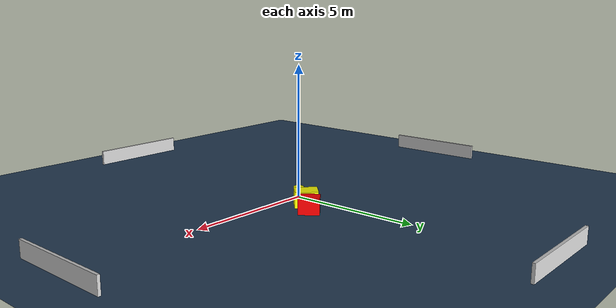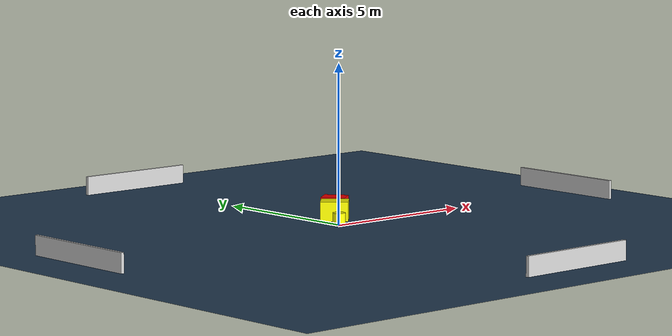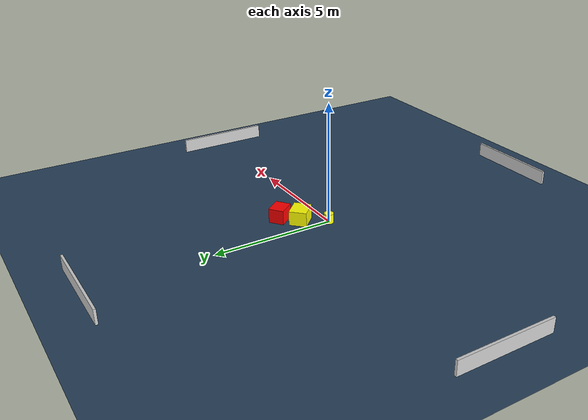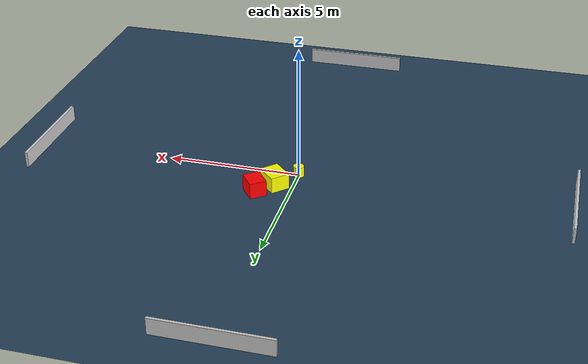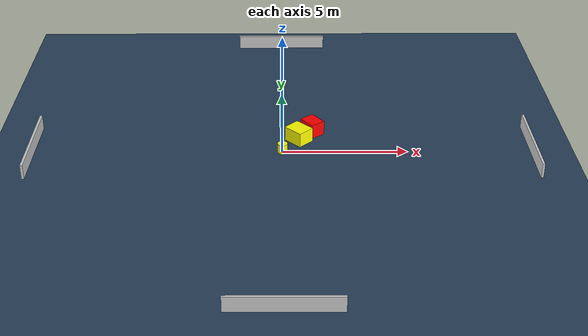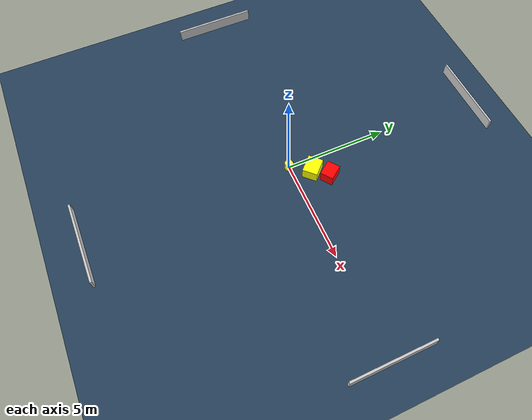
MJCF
<?xml version="1.0" ?>
<mujoco model="generated_environment">
  <option timestep="0.01" integrator="RK4" cone="elliptic"/>
  <default>
    <geom density="1"/>
  </default>
  <asset>
    <texture builtin="gradient" height="3072" name="skybox" rgb1="0.3 0.5 0.7" rgb2="0 0 0" type="skybox" width="512"/>
    <texture builtin="checker" height="300" name="groundplane" rgb1="0.2 0.3 0.4" rgb2="0.1 0.2 0.3" type="2d" width="300"/>
    <material name="groundplane" reflectance="0.2" texrepeat="5 5" texture="groundplane"/>
  </asset>
  <worldbody>
    <light dir="0 0 -1" directional="true" pos="0 0 1.5"/>
    <geom condim="3" friction="0.5 0.005 0.001" material="groundplane" name="floor" pos="0 0 0" size="0 0 0.05" type="plane"/>
    <body name="walls">
      <geom name="wall_1" condim="4" pos="-10.0 0.0 0.3" rgba="0.800000011920929 0.800000011920929 0.800000011920929 1.0" size="0.05 2.0 0.3" type="box"/>
      <geom name="wall_2" condim="4" pos="10.0 0.0 0.3" rgba="0.800000011920929 0.800000011920929 0.800000011920929 1.0" size="0.05 2.0 0.3" type="box"/>
      <geom name="wall_3" condim="4" pos="0.0 -10.0 0.3" rgba="0.800000011920929 0.800000011920929 0.800000011920929 1.0" size="2.0 0.05 0.3" type="box"/>
      <geom name="wall_4" condim="4" pos="0.0 10.0 0.3" rgba="0.800000011920929 0.800000011920929 0.800000011920929 1.0" size="2.0 0.05 0.3" type="box"/>
    </body>
    <body name="robot">
      <joint name="joint_x" type="slide" pos="0 0 0" axis="1 0 0"/>
      <joint name="joint_y" type="slide" pos="0 0 0" axis="0 1 0"/>
      <geom name="robot" type="cylinder" pos="0.0 0.0 0.2" size="0.2 0.2 0.0" mass="5.0" friction="1.0 0.005 0.0001" condim="4" rgba="1.0 1.0 0.0 1.0"/>
    </body>
    <body name="obstacle_1_movable">
      <geom name="obstacle_1_movable" condim="4" pos="0.6645368608948764 0.9348883635521247 0.3" euler="0 0 134.72465060127465" friction="0.0 0.005 0.001" rgba="1.0 1.0 0.0 1.0" size="0.4344667154252524 0.36212811069090173 0.3" type="box" mass="0.1"/>
      <joint type="free"/>
    </body>
    <body name="obstacle_2_static">
      <geom name="obstacle_2_static" condim="4" pos="1.2317226113141697 1.5643439760659017 0.3" euler="0 0 36.73955272769057" friction="0.0 0.005 0.001" rgba="1.0 0.0 0.0 1.0" size="0.3164333934110565 0.38064567394230664 0.3" type="box"/>
    </body>
  </worldbody>
  <actuator>
    <motor name="actuator_x" joint="joint_x" gear="1" ctrlrange="-1 1"/>
    <motor name="actuator_y" joint="joint_y" gear="1" ctrlrange="-1 1"/>
  </actuator>
</mujoco>
